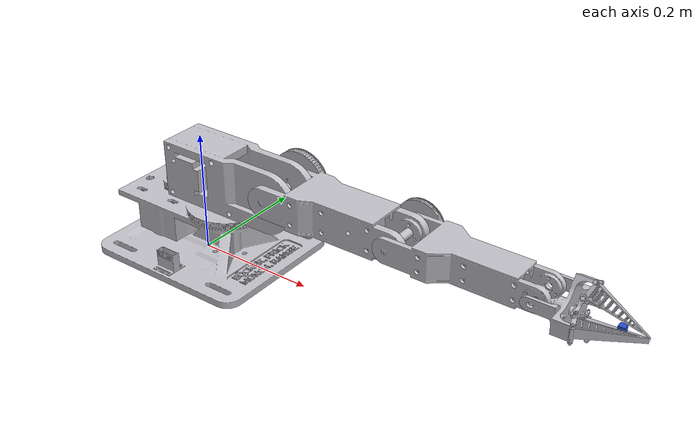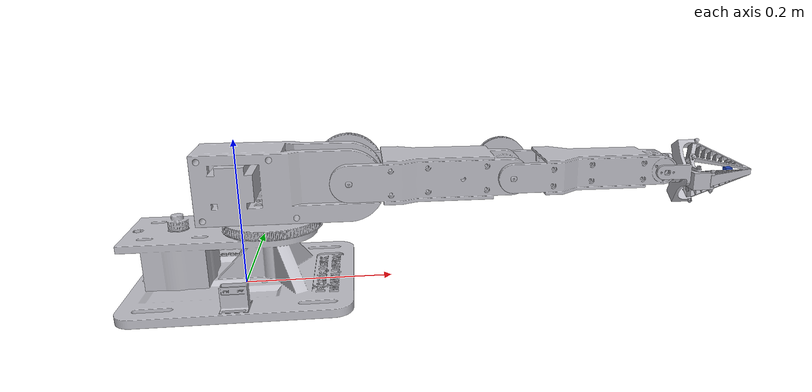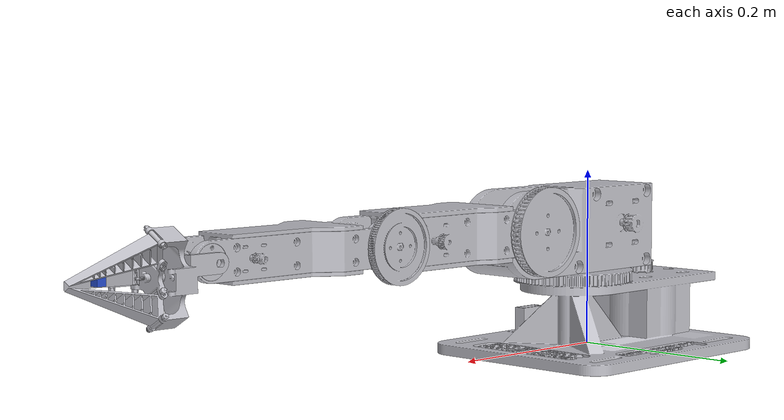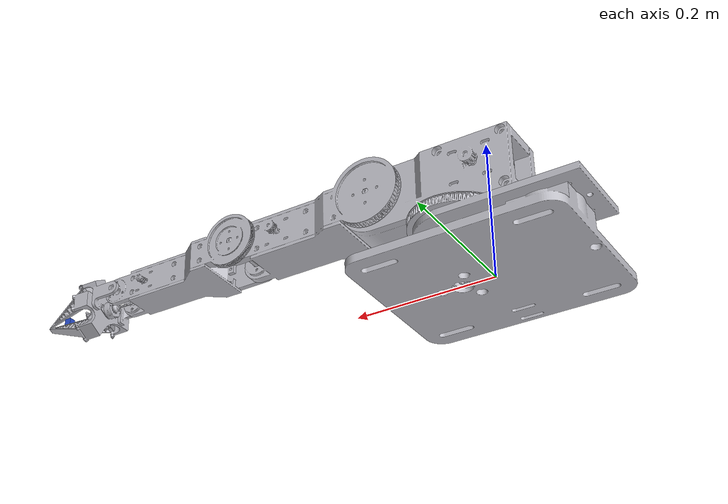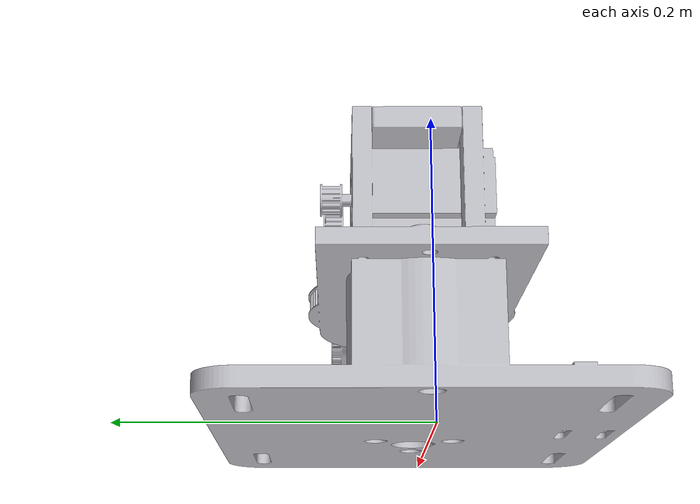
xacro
<?xml version="1.0" ?>
<robot name="robot" xmlns:xacro="http://www.ros.org/wiki/xacro">

<xacro:include filename="$(find robot_description)/urdf/materials.xacro" />
<xacro:include filename="$(find robot_description)/urdf/robot.trans" />
<xacro:include filename="$(find robot_description)/urdf/robot.gazebo" />
<link name="base_link">
  <inertial>
    <origin xyz="-0.01525516398344423 0.011844787362381164 0.03066554293773624" rpy="0 0 0"/>
    <mass value="13.800576305987779"/>
    <inertia ixx="0.052926" iyy="0.098856" izz="0.120212" ixy="7.3e-05" iyz="-0.000151" ixz="0.001895"/>
  </inertial>
  <visual>
    <origin xyz="0 0 0" rpy="0 0 0"/>
    <geometry>
      <mesh filename="package://robot_description/meshes/base_link.stl" scale="0.001 0.001 0.001"/>
    </geometry>
    <material name="silver"/>
  </visual>
  <collision>
    <origin xyz="0 0 0" rpy="0 0 0"/>
    <geometry>
      <mesh filename="package://robot_description/meshes/base_link.stl" scale="0.001 0.001 0.001"/>
    </geometry>
  </collision>
</link>

<link name="finger1_1">
  <inertial>
    <origin xyz="0.017766259815813923 0.019470567148479057 -0.0003130477037422419" rpy="0 0 0"/>
    <mass value="0.007627104997040501"/>
    <inertia ixx="1e-06" iyy="4e-06" izz="5e-06" ixy="-1e-06" iyz="-0.0" ixz="-0.0"/>
  </inertial>
  <visual>
    <origin xyz="-0.649164 0.031879 -0.130769" rpy="0 0 0"/>
    <geometry>
      <mesh filename="package://robot_description/meshes/finger1_1.stl" scale="0.001 0.001 0.001"/>
    </geometry>
    <material name="silver"/>
  </visual>
  <collision>
    <origin xyz="-0.649164 0.031879 -0.130769" rpy="0 0 0"/>
    <geometry>
      <mesh filename="package://robot_description/meshes/finger1_1.stl" scale="0.001 0.001 0.001"/>
    </geometry>
  </collision>
</link>

<link name="finger3_1">
  <inertial>
    <origin xyz="0.016557095492733764 -0.009289304587601917 0.01651813436684768" rpy="0 0 0"/>
    <mass value="0.008118325054343886"/>
    <inertia ixx="1e-06" iyy="5e-06" izz="5e-06" ixy="1e-06" iyz="0.0" ixz="-1e-06"/>
  </inertial>
  <visual>
    <origin xyz="-0.649071 -0.035625 -0.091805" rpy="0 0 0"/>
    <geometry>
      <mesh filename="package://robot_description/meshes/finger3_1.stl" scale="0.001 0.001 0.001"/>
    </geometry>
    <material name="silver"/>
  </visual>
  <collision>
    <origin xyz="-0.649071 -0.035625 -0.091805" rpy="0 0 0"/>
    <geometry>
      <mesh filename="package://robot_description/meshes/finger3_1.stl" scale="0.001 0.001 0.001"/>
    </geometry>
  </collision>
</link>

<link name="finger2_1">
  <inertial>
    <origin xyz="0.016435817583313028 -0.009686132400900348 -0.016410363628854535" rpy="0 0 0"/>
    <mass value="0.008118323730919927"/>
    <inertia ixx="1e-06" iyy="5e-06" izz="5e-06" ixy="1e-06" iyz="-0.0" ixz="1e-06"/>
  </inertial>
  <visual>
    <origin xyz="-0.64911 -0.035617 -0.169747" rpy="0 0 0"/>
    <geometry>
      <mesh filename="package://robot_description/meshes/finger2_1.stl" scale="0.001 0.001 0.001"/>
    </geometry>
    <material name="silver"/>
  </visual>
  <collision>
    <origin xyz="-0.64911 -0.035617 -0.169747" rpy="0 0 0"/>
    <geometry>
      <mesh filename="package://robot_description/meshes/finger2_1.stl" scale="0.001 0.001 0.001"/>
    </geometry>
  </collision>
</link>

<link name="link1_1">
  <inertial>
    <origin xyz="0.009870752041433603 -0.0012985996197881471 0.0283066433531641" rpy="0 0 0"/>
    <mass value="7.642342288589914"/>
    <inertia ixx="0.011727" iyy="0.04053" izz="0.039186" ixy="-0.000551" iyz="8e-05" ixz="0.002475"/>
  </inertial>
  <visual>
    <origin xyz="-0.04005 -0.012465 -0.106459" rpy="0 0 0"/>
    <geometry>
      <mesh filename="package://robot_description/meshes/link1_1.stl" scale="0.001 0.001 0.001"/>
    </geometry>
    <material name="silver"/>
  </visual>
  <collision>
    <origin xyz="-0.04005 -0.012465 -0.106459" rpy="0 0 0"/>
    <geometry>
      <mesh filename="package://robot_description/meshes/link1_1.stl" scale="0.001 0.001 0.001"/>
    </geometry>
  </collision>
</link>

<link name="link2_1">
  <inertial>
    <origin xyz="0.10159804902516775 0.02779415868097769 -5.765765416601565e-05" rpy="0 0 0"/>
    <mass value="4.531072242141342"/>
    <inertia ixx="0.005937" iyy="0.026362" izz="0.029137" ixy="0.002724" iyz="-2e-06" ixz="1.4e-05"/>
  </inertial>
  <visual>
    <origin xyz="-0.146644 0.008424 -0.142894" rpy="0 0 0"/>
    <geometry>
      <mesh filename="package://robot_description/meshes/link2_1.stl" scale="0.001 0.001 0.001"/>
    </geometry>
    <material name="silver"/>
  </visual>
  <collision>
    <origin xyz="-0.146644 0.008424 -0.142894" rpy="0 0 0"/>
    <geometry>
      <mesh filename="package://robot_description/meshes/link2_1.stl" scale="0.001 0.001 0.001"/>
    </geometry>
  </collision>
</link>

<link name="link3_1">
  <inertial>
    <origin xyz="0.09430665017480633 0.033435499071081135 -4.474360302914038e-05" rpy="0 0 0"/>
    <mass value="1.942633915240748"/>
    <inertia ixx="0.002161" iyy="0.012682" izz="0.01426" ixy="0.001492" iyz="-1e-06" ixz="6e-06"/>
  </inertial>
  <visual>
    <origin xyz="-0.366648 0.012186 -0.142763" rpy="0 0 0"/>
    <geometry>
      <mesh filename="package://robot_description/meshes/link3_1.stl" scale="0.001 0.001 0.001"/>
    </geometry>
    <material name="silver"/>
  </visual>
  <collision>
    <origin xyz="-0.366648 0.012186 -0.142763" rpy="0 0 0"/>
    <geometry>
      <mesh filename="package://robot_description/meshes/link3_1.stl" scale="0.001 0.001 0.001"/>
    </geometry>
  </collision>
</link>

<link name="link4_1">
  <inertial>
    <origin xyz="0.040594015010658735 0.007526480171399416 -0.011433358935294402" rpy="0 0 0"/>
    <mass value="0.2862169162828504"/>
    <inertia ixx="0.000355" iyy="0.000164" izz="0.00024" ixy="-7e-06" iyz="1e-06" ixz="3e-06"/>
  </inertial>
  <visual>
    <origin xyz="-0.586621 -0.013052 -0.142653" rpy="0 0 0"/>
    <geometry>
      <mesh filename="package://robot_description/meshes/link4_1.stl" scale="0.001 0.001 0.001"/>
    </geometry>
    <material name="silver"/>
  </visual>
  <collision>
    <origin xyz="-0.586621 -0.013052 -0.142653" rpy="0 0 0"/>
    <geometry>
      <mesh filename="package://robot_description/meshes/link4_1.stl" scale="0.001 0.001 0.001"/>
    </geometry>
  </collision>
</link>

<link name="plate_1">
  <inertial>
    <origin xyz="0.002936460578468969 -3.32136638021667e-06 1.0551585629070548e-05" rpy="0 0 0"/>
    <mass value="0.005591792200815245"/>
    <inertia ixx="1e-06" iyy="1e-06" izz="1e-06" ixy="0.0" iyz="0.0" ixz="-0.0"/>
  </inertial>
  <visual>
    <origin xyz="-0.636482 -0.013107 -0.13078" rpy="0 0 0"/>
    <geometry>
      <mesh filename="package://robot_description/meshes/plate_1.stl" scale="0.001 0.001 0.001"/>
    </geometry>
    <material name="silver"/>
  </visual>
  <collision>
    <origin xyz="-0.636482 -0.013107 -0.13078" rpy="0 0 0"/>
    <geometry>
      <mesh filename="package://robot_description/meshes/plate_1.stl" scale="0.001 0.001 0.001"/>
    </geometry>
  </collision>
</link>

<link name="tcp_link">
  <visual>
    <geometry>
      <box size="0.01 0.01 0.01"/> <!-- or a mesh -->
    </geometry>
    <material name="blue"/>
  </visual>
</link>

<joint name="joint_finger1" type="continuous">
  <origin xyz="0.062543 -0.044931 -0.011884" rpy="0 0 0"/>
  <parent link="link4_1"/>
  <child link="finger1_1"/>
  <axis xyz="-0.000509 0.000108 -1.0"/>
  <mimic joint="joint_plate" multiplier="38.79"/>
  <limit upper="0.349066" lower="0.0" effort="100.0" velocity="100"/>
</joint>

<joint name="joint_finger2" type="continuous">
  <origin xyz="0.06245 0.022573 -0.050848" rpy="0 0 0"/>
  <parent link="link4_1"/>
  <child link="finger3_1"/>
  <axis xyz="-0.000682 0.865971 0.500094"/>
  <mimic joint="joint_plate" multiplier="38.79"/>
  <limit upper="0.349066" lower="0.0" effort="100.0" velocity="100"/>
</joint>

<joint name="joint_finger3" type="continuous">
  <origin xyz="0.062489 0.022565 0.027094" rpy="0 0 0"/>
  <parent link="link4_1"/>
  <child link="finger2_1"/>
  <axis xyz="0.001191 -0.866079 0.499906"/>
  <mimic joint="joint_plate" multiplier="38.79"/>
  <limit upper="0.349066" lower="0.0" effort="100.0" velocity="100"/>
</joint>

<joint name="joint1" type="revolute">
  <origin xyz="0.04005 0.012465 0.106459" rpy="0 0 0"/>
  <parent link="base_link"/>
  <child link="link1_1"/>
  <axis xyz="0.000594 -0.000107 1.0"/>
  <limit upper="2.617994" lower="-2.617994" effort="100" velocity="100"/>
</joint>

<joint name="joint2" type="revolute">
  <origin xyz="0.106594 -0.020889 0.036435" rpy="0 0 0"/>
  <parent link="link1_1"/>
  <child link="link2_1"/>
  <axis xyz="0.001081 -0.999999 -0.000108"/>
  <limit upper="1.658063" lower="0.0" effort="100" velocity="100"/>
</joint>

<joint name="joint3" type="revolute">
  <origin xyz="0.220004 -0.003762 -0.000131" rpy="0 0 0"/>
  <parent link="link2_1"/>
  <child link="link3_1"/>
  <axis xyz="0.001081 -0.999999 -0.000108"/>
  <limit upper="2.094395" lower="-2.007129" effort="100" velocity="100"/>
</joint>

<joint name="joint4" type="revolute">
  <origin xyz="0.219973 0.025238 -0.00011" rpy="0 0 0"/>
  <parent link="link3_1"/>
  <child link="link4_1"/>
  <axis xyz="-0.001081 0.999999 0.000108"/>
  <limit upper="1.745329" lower="-1.570796" effort="100" velocity="100"/>
</joint>

<joint name="joint_plate" type="prismatic">
  <origin xyz="0.049861 5.5e-05 -0.011873" rpy="0 0 0"/>
  <parent link="link4_1"/>
  <child link="plate_1"/>
  <axis xyz="0.999999 0.001081 -0.000509"/>
  <limit upper="0.01" lower="0.0" effort="100" velocity="100"/>
</joint>
<joint name="tcp_fixed_joint" type="fixed">
  <parent link="link4_1"/>
  <child link="tcp_link"/>
  <!-- Adjust the XYZ offset to place the TCP properly -->
  <origin xyz="0.11 0 -0.01" rpy="0 0 0"/>
</joint>
</robot>

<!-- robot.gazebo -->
<robot name="robot" xmlns:xacro="http://www.ros.org/wiki/xacro" >

<xacro:property name="body_color" value="Gazebo/Silver" />

<gazebo>
  <plugin name="control" filename="libgazebo_ros_control.so"/>
</gazebo>
<gazebo reference="base_link">
  <material>${body_color}</material>
  <mu1>0.2</mu1>
  <mu2>0.2</mu2>
  <self_collide>true</self_collide>
  <gravity>true</gravity>
</gazebo>

<gazebo reference="finger1_1">
  <material>${body_color}</material>
  <mu1>0.2</mu1>
  <mu2>0.2</mu2>
  <self_collide>true</self_collide>
</gazebo>

<gazebo reference="finger3_1">
  <material>${body_color}</material>
  <mu1>0.2</mu1>
  <mu2>0.2</mu2>
  <self_collide>true</self_collide>
</gazebo>

<gazebo reference="finger2_1">
  <material>${body_color}</material>
  <mu1>0.2</mu1>
  <mu2>0.2</mu2>
  <self_collide>true</self_collide>
</gazebo>

<gazebo reference="link1_1">
  <material>${body_color}</material>
  <mu1>0.2</mu1>
  <mu2>0.2</mu2>
  <self_collide>true</self_collide>
</gazebo>

<gazebo reference="link2_1">
  <material>${body_color}</material>
  <mu1>0.2</mu1>
  <mu2>0.2</mu2>
  <self_collide>true</self_collide>
</gazebo>

<gazebo reference="link3_1">
  <material>${body_color}</material>
  <mu1>0.2</mu1>
  <mu2>0.2</mu2>
  <self_collide>true</self_collide>
</gazebo>

<gazebo reference="link4_1">
  <material>${body_color}</material>
  <mu1>0.2</mu1>
  <mu2>0.2</mu2>
  <self_collide>true</self_collide>
</gazebo>

<gazebo reference="plate_1">
  <material>${body_color}</material>
  <mu1>0.2</mu1>
  <mu2>0.2</mu2>
  <self_collide>true</self_collide>
</gazebo>

</robot>
